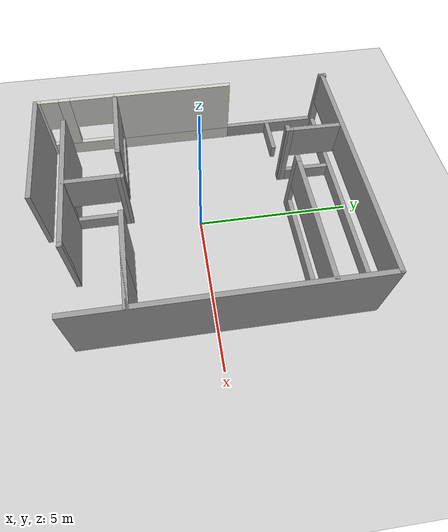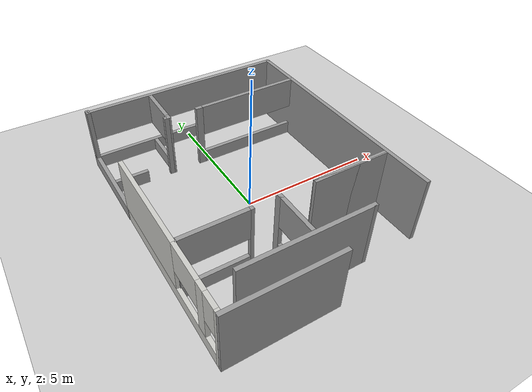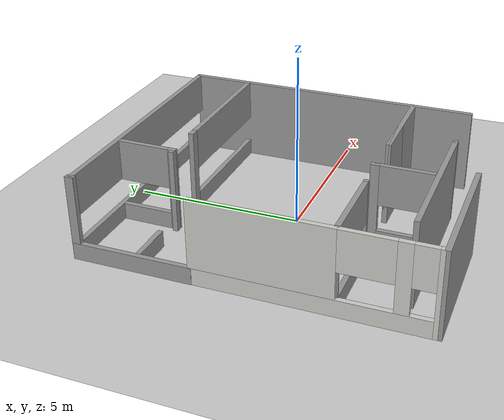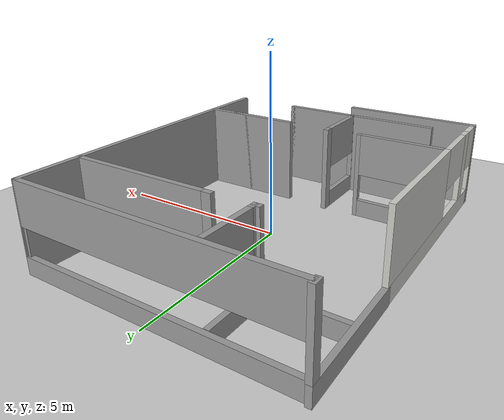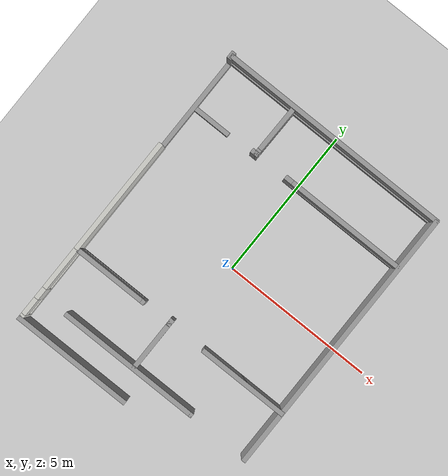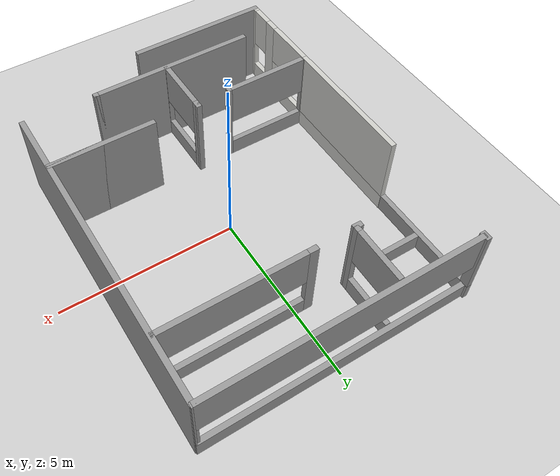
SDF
<sdf version="1.7">
 <world name="default">
  <light name="sun" type="directional">
   <pose>0 0 10 0 -0 0</pose>
   <diffuse>0.8 0.8 0.8 1</diffuse>
   <specular>0.2 0.2 0.2 1</specular>
   <attenuation>
    <range>1000</range>
    <constant>0.9</constant>
    <linear>0.01</linear>
    <quadratic>0.001</quadratic>
   </attenuation>
   <direction>-0.5 0.1 -0.9</direction>
   <spot><inner_angle>0</inner_angle><outer_angle>0</outer_angle><falloff>0</falloff></spot>
  </light>
  <model name="ground_plane">
   <static>1</static>
   <link name="link">
    <collision name="collision">
     <geometry><plane><normal>0 0 1</normal><size>100 100</size></plane></geometry>
     <surface>
      <contact><collide_bitmask>65535</collide_bitmask></contact>
      <friction><ode><mu>100</mu><mu2>50</mu2></ode></friction>
     </surface>
    </collision>
    <visual name="visual">
     <cast_shadows>0</cast_shadows>
     <geometry><plane><normal>0 0 1</normal><size>100 100</size></plane></geometry>
     <material>
      <script><uri>file://media/materials/scripts/gazebo.material</uri><name>Gazebo/Grey</name></script>
     </material>
    </visual>
   </link>
  </model>
  <gravity>0 0 -9.8</gravity>
  <magnetic_field>6e-06 2.3e-05 -4.2e-05</magnetic_field>
  <atmosphere type="adiabatic"/>
  <physics type="ode">
   <max_step_size>0.001</max_step_size>
   <real_time_factor>1</real_time_factor>
   <real_time_update_rate>1000</real_time_update_rate>
  </physics>
  <scene><ambient>0.4 0.4 0.4 1</ambient><background>0.7 0.7 0.7 1</background><shadows>1</shadows></scene>
  <spherical_coordinates>
   <surface_model>EARTH_WGS84</surface_model>
   <latitude_deg>0</latitude_deg>
   <longitude_deg>0</longitude_deg>
   <elevation>0</elevation>
   <heading_deg>0</heading_deg>
  </spherical_coordinates>
  <model name="Office_room_without_door">
   <pose>-0.084232 -0.06872 0 0 -0 0</pose>
   <link name="Wall_1">
    <collision name="Wall_1_Collision">
     <geometry><box><size>4.75 0.15 2.5</size></box></geometry>
     <pose>0 0 1.25 0 -0 0</pose>
    </collision>
    <visual name="Wall_1_Visual">
     <pose>0 0 1.25 0 -0 0</pose>
     <geometry><box><size>4.75 0.15 2.5</size></box></geometry>
     <material>
      <script><uri>file://media/materials/scripts/gazebo.material</uri><name>Gazebo/Grey</name></script>
      <ambient>1 1 1 1</ambient>
     </material>
     <meta><layer>0</layer></meta>
    </visual>
    <pose>-0.516715 -3.99864 0 0 -0 0</pose>
   </link>
   <link name="Wall_14">
    <collision name="Wall_14_Collision">
     <geometry><box><size>3 0.15 2.5</size></box></geometry>
     <pose>0 0 1.25 0 -0 0</pose>
    </collision>
    <visual name="Wall_14_Visual">
     <pose>0 0 1.25 0 -0 0</pose>
     <geometry><box><size>3 0.15 2.5</size></box></geometry>
     <material>
      <script><uri>file://media/materials/scripts/gazebo.material</uri><name>Gazebo/Grey</name></script>
      <ambient>1 1 1 1</ambient>
     </material>
     <meta><layer>0</layer></meta>
    </visual>
    <pose>2.39026 -2.31103 0 0 -0 3.14159</pose>
   </link>
   <link name="Wall_15">
    <collision name="Wall_15_Collision">
     <geometry><box><size>3 0.15 2.5</size></box></geometry>
     <pose>0 0 1.25 0 -0 0</pose>
    </collision>
    <visual name="Wall_15_Visual">
     <pose>0 0 1.25 0 -0 0</pose>
     <geometry><box><size>3 0.15 2.5</size></box></geometry>
     <material>
      <script><uri>file://media/materials/scripts/gazebo.material</uri><name>Gazebo/Grey</name></script>
      <ambient>1 1 1 1</ambient>
     </material>
     <meta><layer>0</layer></meta>
    </visual>
    <pose>2.39026 -2.31103 0 0 -0 0</pose>
   </link>
   <link name="Wall_19">
    <collision name="Wall_19_Collision">
     <geometry><box><size>0.25 0.15 2.5</size></box></geometry>
     <pose>0 0 1.25 0 -0 0</pose>
    </collision>
    <visual name="Wall_19_Visual">
     <pose>0 0 1.25 0 -0 0</pose>
     <geometry><box><size>0.25 0.15 2.5</size></box></geometry>
     <material>
      <script><uri>file://media/materials/scripts/gazebo.material</uri><name>Gazebo/Grey</name></script>
      <ambient>1 1 1 1</ambient>
     </material>
     <meta><layer>0</layer></meta>
    </visual>
    <pose>-0.346715 -2.28864 0 0 -0 1.5708</pose>
   </link>
   <link name="Wall_2">
    <collision name="Wall_2_Collision">
     <geometry><box><size>0.15 0.15 2.5</size></box></geometry>
     <pose>0 0 1.25 0 -0 0</pose>
    </collision>
    <visual name="Wall_2_Visual">
     <pose>0 0 1.25 0 -0 0</pose>
     <geometry><box><size>0.15 0.15 2.5</size></box></geometry>
     <material>
      <script><uri>file://media/materials/scripts/gazebo.material</uri><name>Gazebo/Grey</name></script>
      <ambient>1 1 1 1</ambient>
     </material>
     <meta><layer>0</layer></meta>
    </visual>
    <pose>1.78329 -3.99864 0 0 -0 0</pose>
   </link>
   <link name="Wall_29">
    <collision name="Wall_29_Collision">
     <geometry><box><size>9 0.15 2.5</size></box></geometry>
     <pose>0 0 1.25 0 -0 0</pose>
    </collision>
    <visual name="Wall_29_Visual">
     <pose>0 0 1.25 0 -0 0</pose>
     <geometry><box><size>9 0.15 2.5</size></box></geometry>
     <material>
      <script><uri>file://media/materials/scripts/gazebo.material</uri><name>Gazebo/Grey</name></script>
      <ambient>1 1 1 1</ambient>
     </material>
     <meta><layer>0</layer></meta>
    </visual>
    <pose>3.83671 0.402172 0 0 0 -1.5708</pose>
   </link>
   <link name="Wall_31">
    <collision name="Wall_31_Collision">
     <geometry><box><size>0.25 0.15 2.5</size></box></geometry>
     <pose>0 0 1.25 0 -0 0</pose>
    </collision>
    <visual name="Wall_31_Visual">
     <pose>0 0 1.25 0 -0 0</pose>
     <geometry><box><size>0.25 0.15 2.5</size></box></geometry>
     <material>
      <script><uri>file://media/materials/scripts/gazebo.material</uri><name>Gazebo/Grey</name></script>
      <ambient>1 1 1 1</ambient>
     </material>
     <meta><layer>0</layer></meta>
    </visual>
    <pose>-1.53122 3.11017 0 0 -0 3.14159</pose>
   </link>
   <link name="Wall_35">
    <pose>0.017406 4.87007 0 0 -0 0</pose>
    <visual name="Wall_35_Visual_0">
     <pose>-3.85781 0 1.25 0 -0 0</pose>
     <geometry><box><size>0.034369 0.15 2.5</size></box></geometry>
     <material>
      <script><uri>file://media/materials/scripts/gazebo.material</uri><name>Gazebo/Grey</name></script>
      <ambient>1 1 1 1</ambient>
     </material>
     <meta><layer>0</layer></meta>
    </visual>
    <collision name="Wall_35_Collision_0">
     <geometry><box><size>0.034369 0.15 2.5</size></box></geometry>
     <pose>-3.85781 0 1.25 0 -0 0</pose>
    </collision>
    <visual name="Wall_35_Visual_1">
     <pose>0.017185 0 0.25 0 -0 0</pose>
     <geometry><box><size>7.71563 0.15 0.5</size></box></geometry>
     <material>
      <script><uri>file://media/materials/scripts/gazebo.material</uri><name>Gazebo/Grey</name></script>
      <ambient>1 1 1 1</ambient>
     </material>
     <meta><layer>0</layer></meta>
    </visual>
    <collision name="Wall_35_Collision_1">
     <geometry><box><size>7.71563 0.15 0.5</size></box></geometry>
     <pose>0.017185 0 0.25 0 -0 0</pose>
    </collision>
    <visual name="Wall_35_Visual_2">
     <pose>3.85399 0 1.5 0 -0 0</pose>
     <geometry><box><size>0.042012 0.15 2</size></box></geometry>
     <material>
      <script><uri>file://media/materials/scripts/gazebo.material</uri><name>Gazebo/Grey</name></script>
      <ambient>1 1 1 1</ambient>
     </material>
     <meta><layer>0</layer></meta>
    </visual>
    <collision name="Wall_35_Collision_2">
     <geometry><box><size>0.042012 0.15 2</size></box></geometry>
     <pose>3.85399 0 1.5 0 -0 0</pose>
    </collision>
    <visual name="Wall_35_Visual_3">
     <pose>-0.003821 0 1.9 0 -0 0</pose>
     <geometry><box><size>7.67362 0.15 1.2</size></box></geometry>
     <material>
      <script><uri>file://media/materials/scripts/gazebo.material</uri><name>Gazebo/Grey</name></script>
      <ambient>1 1 1 1</ambient>
     </material>
     <meta><layer>0</layer></meta>
    </visual>
    <collision name="Wall_35_Collision_3">
     <geometry><box><size>7.67362 0.15 1.2</size></box></geometry>
     <pose>-0.003821 0 1.9 0 -0 0</pose>
    </collision>
   </link>
   <link name="Wall_37">
    <pose>-3.83671 3.25636 0 0 -0 1.5708</pose>
    <visual name="Wall_37_Visual_0">
     <pose>0 0 0.25 0 -0 0</pose>
     <geometry><box><size>3.5 0.15 0.5</size></box></geometry>
     <material>
      <script><uri>file://media/materials/scripts/gazebo.material</uri><name>Gazebo/Grey</name></script>
      <ambient>1 1 1 1</ambient>
     </material>
     <meta><layer>0</layer></meta>
    </visual>
    <collision name="Wall_37_Collision_0">
     <geometry><box><size>3.5 0.15 0.5</size></box></geometry>
     <pose>0 0 0.25 0 -0 0</pose>
    </collision>
    <visual name="Wall_37_Visual_1">
     <pose>1.62366 0 1.5 0 -0 0</pose>
     <geometry><box><size>0.252674 0.15 2</size></box></geometry>
     <material>
      <script><uri>file://media/materials/scripts/gazebo.material</uri><name>Gazebo/Grey</name></script>
      <ambient>1 1 1 1</ambient>
     </material>
     <meta><layer>0</layer></meta>
    </visual>
    <collision name="Wall_37_Collision_1">
     <geometry><box><size>0.252674 0.15 2</size></box></geometry>
     <pose>1.62366 0 1.5 0 -0 0</pose>
    </collision>
   </link>
   <link name="Wall_40">
    <pose>-3.13843 3.10362 0 0 -0 3.14159</pose>
    <visual name="Wall_40_Visual_0">
     <pose>0 0 0.25 0 -0 0</pose>
     <geometry><box><size>1.25 0.15 0.5</size></box></geometry>
     <material>
      <script><uri>file://media/materials/scripts/gazebo.material</uri><name>Gazebo/Grey</name></script>
      <ambient>1 1 1 1</ambient>
     </material>
     <meta><layer>0</layer></meta>
    </visual>
    <collision name="Wall_40_Collision_0">
     <geometry><box><size>1.25 0.15 0.5</size></box></geometry>
     <pose>0 0 0.25 0 -0 0</pose>
    </collision>
   </link>
   <link name="Wall_42">
    <pose>1.72225 3.1198 0 0 -0 0</pose>
    <visual name="Wall_42_Visual_0">
     <pose>-1.99309 0 1.25 0 -0 0</pose>
     <geometry><box><size>0.26382 0.15 2.5</size></box></geometry>
     <material>
      <script><uri>file://media/materials/scripts/gazebo.material</uri><name>Gazebo/Grey</name></script>
      <ambient>1 1 1 1</ambient>
     </material>
     <meta><layer>0</layer></meta>
    </visual>
    <collision name="Wall_42_Collision_0">
     <geometry><box><size>0.26382 0.15 2.5</size></box></geometry>
     <pose>-1.99309 0 1.25 0 -0 0</pose>
    </collision>
    <visual name="Wall_42_Visual_1">
     <pose>0.13191 0 0.25 0 -0 0</pose>
     <geometry><box><size>3.98618 0.15 0.5</size></box></geometry>
     <material>
      <script><uri>file://media/materials/scripts/gazebo.material</uri><name>Gazebo/Grey</name></script>
      <ambient>1 1 1 1</ambient>
     </material>
     <meta><layer>0</layer></meta>
    </visual>
    <collision name="Wall_42_Collision_1">
     <geometry><box><size>3.98618 0.15 0.5</size></box></geometry>
     <pose>0.13191 0 0.25 0 -0 0</pose>
    </collision>
    <visual name="Wall_42_Visual_2">
     <pose>2.10351 0 1.5 0 -0 0</pose>
     <geometry><box><size>0.042976 0.15 2</size></box></geometry>
     <material>
      <script><uri>file://media/materials/scripts/gazebo.material</uri><name>Gazebo/Grey</name></script>
      <ambient>1 1 1 1</ambient>
     </material>
     <meta><layer>0</layer></meta>
    </visual>
    <collision name="Wall_42_Collision_2">
     <geometry><box><size>0.042976 0.15 2</size></box></geometry>
     <pose>2.10351 0 1.5 0 -0 0</pose>
    </collision>
    <visual name="Wall_42_Visual_3">
     <pose>0.110422 0 1.9 0 -0 0</pose>
     <geometry><box><size>3.9432 0.15 1.2</size></box></geometry>
     <material>
      <script><uri>file://media/materials/scripts/gazebo.material</uri><name>Gazebo/Grey</name></script>
      <ambient>1 1 1 1</ambient>
     </material>
     <meta><layer>0</layer></meta>
    </visual>
    <collision name="Wall_42_Collision_3">
     <geometry><box><size>3.9432 0.15 1.2</size></box></geometry>
     <pose>0.110422 0 1.9 0 -0 0</pose>
    </collision>
   </link>
   <link name="Wall_44">
    <pose>-2.52917 -2.3175 0 0 -0 3.14159</pose>
    <visual name="Wall_44_Visual_0">
     <pose>-1.1869 0 1.25 0 -0 0</pose>
     <geometry><box><size>0.126206 0.15 2.5</size></box></geometry>
     <material>
      <script><uri>file://media/materials/scripts/gazebo.material</uri><name>Gazebo/Grey</name></script>
      <ambient>1 1 1 1</ambient>
     </material>
     <meta><layer>0</layer></meta>
    </visual>
    <collision name="Wall_44_Collision_0">
     <geometry><box><size>0.126206 0.15 2.5</size></box></geometry>
     <pose>-1.1869 0 1.25 0 -0 0</pose>
    </collision>
    <visual name="Wall_44_Visual_1">
     <pose>0.063103 0 0.25 0 -0 0</pose>
     <geometry><box><size>2.37379 0.15 0.5</size></box></geometry>
     <material>
      <script><uri>file://media/materials/scripts/gazebo.material</uri><name>Gazebo/Grey</name></script>
      <ambient>1 1 1 1</ambient>
     </material>
     <meta><layer>0</layer></meta>
    </visual>
    <collision name="Wall_44_Collision_1">
     <geometry><box><size>2.37379 0.15 0.5</size></box></geometry>
     <pose>0.063103 0 0.25 0 -0 0</pose>
    </collision>
    <visual name="Wall_44_Visual_2">
     <pose>1.22403 0 1.5 0 -0 0</pose>
     <geometry><box><size>0.05193 0.15 2</size></box></geometry>
     <material>
      <script><uri>file://media/materials/scripts/gazebo.material</uri><name>Gazebo/Grey</name></script>
      <ambient>1 1 1 1</ambient>
     </material>
     <meta><layer>0</layer></meta>
    </visual>
    <collision name="Wall_44_Collision_2">
     <geometry><box><size>0.05193 0.15 2</size></box></geometry>
     <pose>1.22403 0 1.5 0 -0 0</pose>
    </collision>
    <visual name="Wall_44_Visual_3">
     <pose>0.037138 0 1.9 0 -0 0</pose>
     <geometry><box><size>2.32186 0.15 1.2</size></box></geometry>
     <material>
      <script><uri>file://media/materials/scripts/gazebo.material</uri><name>Gazebo/Grey</name></script>
      <ambient>1 1 1 1</ambient>
     </material>
     <meta><layer>0</layer></meta>
    </visual>
    <collision name="Wall_44_Collision_3">
     <geometry><box><size>2.32186 0.15 1.2</size></box></geometry>
     <pose>0.037138 0 1.9 0 -0 0</pose>
    </collision>
   </link>
   <link name="Wall_46">
    <pose>-0.346715 -3.13864 0 0 0 -1.5708</pose>
    <visual name="Wall_46_Visual_0">
     <pose>-0.806799 0 1.25 0 -0 0</pose>
     <geometry><box><size>0.136402 0.15 2.5</size></box></geometry>
     <material>
      <script><uri>file://media/materials/scripts/gazebo.material</uri><name>Gazebo/Grey</name></script>
      <ambient>1 1 1 1</ambient>
     </material>
     <meta><layer>0</layer></meta>
    </visual>
    <collision name="Wall_46_Collision_0">
     <geometry><box><size>0.136402 0.15 2.5</size></box></geometry>
     <pose>-0.806799 0 1.25 0 -0 0</pose>
    </collision>
    <visual name="Wall_46_Visual_1">
     <pose>0.068201 0 0.25 0 -0 0</pose>
     <geometry><box><size>1.6136 0.15 0.5</size></box></geometry>
     <material>
      <script><uri>file://media/materials/scripts/gazebo.material</uri><name>Gazebo/Grey</name></script>
      <ambient>1 1 1 1</ambient>
     </material>
     <meta><layer>0</layer></meta>
    </visual>
    <collision name="Wall_46_Collision_1">
     <geometry><box><size>1.6136 0.15 0.5</size></box></geometry>
     <pose>0.068201 0 0.25 0 -0 0</pose>
    </collision>
    <visual name="Wall_46_Visual_2">
     <pose>0.824679 0 1.5 0 -0 0</pose>
     <geometry><box><size>0.100642 0.15 2</size></box></geometry>
     <material>
      <script><uri>file://media/materials/scripts/gazebo.material</uri><name>Gazebo/Grey</name></script>
      <ambient>1 1 1 1</ambient>
     </material>
     <meta><layer>0</layer></meta>
    </visual>
    <collision name="Wall_46_Collision_2">
     <geometry><box><size>0.100642 0.15 2</size></box></geometry>
     <pose>0.824679 0 1.5 0 -0 0</pose>
    </collision>
    <visual name="Wall_46_Visual_3">
     <pose>0.01788 0 1.9 0 -0 0</pose>
     <geometry><box><size>1.51296 0.15 1.2</size></box></geometry>
     <material>
      <script><uri>file://media/materials/scripts/gazebo.material</uri><name>Gazebo/Grey</name></script>
      <ambient>1 1 1 1</ambient>
     </material>
     <meta><layer>0</layer></meta>
    </visual>
    <collision name="Wall_46_Collision_3">
     <geometry><box><size>1.51296 0.15 1.2</size></box></geometry>
     <pose>0.01788 0 1.9 0 -0 0</pose>
    </collision>
   </link>
   <link name="Wall_48">
    <pose>-1.47116 3.91017 0 0 -0 1.55823</pose>
    <visual name="Wall_48_Visual_0">
     <pose>-0.758357 0 1.25 0 -0 0</pose>
     <geometry><box><size>0.233412 0.15 2.5</size></box></geometry>
     <material>
      <script><uri>file://media/materials/scripts/gazebo.material</uri><name>Gazebo/Grey</name></script>
      <ambient>1 1 1 1</ambient>
     </material>
     <meta><layer>0</layer></meta>
    </visual>
    <collision name="Wall_48_Collision_0">
     <geometry><box><size>0.233412 0.15 2.5</size></box></geometry>
     <pose>-0.758357 0 1.25 0 -0 0</pose>
    </collision>
    <visual name="Wall_48_Visual_1">
     <pose>0.116706 0 0.25 0 -0 0</pose>
     <geometry><box><size>1.51671 0.15 0.5</size></box></geometry>
     <material>
      <script><uri>file://media/materials/scripts/gazebo.material</uri><name>Gazebo/Grey</name></script>
      <ambient>1 1 1 1</ambient>
     </material>
     <meta><layer>0</layer></meta>
    </visual>
    <collision name="Wall_48_Collision_1">
     <geometry><box><size>1.51671 0.15 0.5</size></box></geometry>
     <pose>0.116706 0 0.25 0 -0 0</pose>
    </collision>
    <visual name="Wall_48_Visual_2">
     <pose>0.116706 0 1.9 0 -0 0</pose>
     <geometry><box><size>1.51671 0.15 1.2</size></box></geometry>
     <material>
      <script><uri>file://media/materials/scripts/gazebo.material</uri><name>Gazebo/Grey</name></script>
      <ambient>1 1 1 1</ambient>
     </material>
     <meta><layer>0</layer></meta>
    </visual>
    <collision name="Wall_48_Collision_2">
     <geometry><box><size>1.51671 0.15 1.2</size></box></geometry>
     <pose>0.116706 0 1.9 0 -0 0</pose>
    </collision>
   </link>
   <link name="Wall_7">
    <collision name="Wall_7_Collision">
     <geometry><box><size>4 0.15 2.5</size></box></geometry>
     <pose>0 0 1.25 0 -0 0</pose>
    </collision>
    <visual name="Wall_7_Visual">
     <pose>0 0 1.25 0 -0 0</pose>
     <geometry><box><size>4 0.15 2.5</size></box></geometry>
     <material>
      <script><uri>file://media/materials/scripts/gazebo.material</uri><name>Gazebo/Grey</name></script>
      <ambient>0 0 0 1</ambient>
     </material>
     <meta><layer>0</layer></meta>
    </visual>
    <pose>-1.89688 -4.93136 0 0 -0 0</pose>
   </link>
   <link name="Wall_9">
    <pose>-3.82332 -1.64581 0 0 -0 1.5708</pose>
    <visual name="Wall_9_Visual_0">
     <pose>-3.18923 0 1.25 0 -0 0</pose>
     <geometry><box><size>0.121542 0.15 2.5</size></box></geometry>
     <material>
      <script><uri>file://media/materials/scripts/gazebo.material</uri><name>Gazebo/CeilingTiled</name></script>
      <ambient>1 1 1 1</ambient>
     </material>
     <meta><layer>0</layer></meta>
    </visual>
    <collision name="Wall_9_Collision_0">
     <geometry><box><size>0.121542 0.15 2.5</size></box></geometry>
     <pose>-3.18923 0 1.25 0 -0 0</pose>
    </collision>
    <visual name="Wall_9_Visual_1">
     <pose>0.060771 0 0.25 0 -0 0</pose>
     <geometry><box><size>6.37846 0.15 0.5</size></box></geometry>
     <material>
      <script><uri>file://media/materials/scripts/gazebo.material</uri><name>Gazebo/CeilingTiled</name></script>
      <ambient>1 1 1 1</ambient>
     </material>
     <meta><layer>0</layer></meta>
    </visual>
    <collision name="Wall_9_Collision_1">
     <geometry><box><size>6.37846 0.15 0.5</size></box></geometry>
     <pose>0.060771 0 0.25 0 -0 0</pose>
    </collision>
    <visual name="Wall_9_Visual_2">
     <pose>-2.34543 0 1.5 0 -0 0</pose>
     <geometry><box><size>0.385418 0.15 2</size></box></geometry>
     <material>
      <script><uri>file://media/materials/scripts/gazebo.material</uri><name>Gazebo/CeilingTiled</name></script>
      <ambient>1 1 1 1</ambient>
     </material>
     <meta><layer>0</layer></meta>
    </visual>
    <collision name="Wall_9_Collision_2">
     <geometry><box><size>0.385418 0.15 2</size></box></geometry>
     <pose>-2.34543 0 1.5 0 -0 0</pose>
    </collision>
    <visual name="Wall_9_Visual_3">
     <pose>1.27449 0 1.5 0 -0 0</pose>
     <geometry><box><size>3.95101 0.15 2</size></box></geometry>
     <material>
      <script><uri>file://media/materials/scripts/gazebo.material</uri><name>Gazebo/CeilingTiled</name></script>
      <ambient>1 1 1 1</ambient>
     </material>
     <meta><layer>0</layer></meta>
    </visual>
    <collision name="Wall_9_Collision_3">
     <geometry><box><size>3.95101 0.15 2</size></box></geometry>
     <pose>1.27449 0 1.5 0 -0 0</pose>
    </collision>
    <visual name="Wall_9_Visual_4">
     <pose>-2.8333 0 1.9 0 -0 0</pose>
     <geometry><box><size>0.590321 0.15 1.2</size></box></geometry>
     <material>
      <script><uri>file://media/materials/scripts/gazebo.material</uri><name>Gazebo/CeilingTiled</name></script>
      <ambient>1 1 1 1</ambient>
     </material>
     <meta><layer>0</layer></meta>
    </visual>
    <collision name="Wall_9_Collision_4">
     <geometry><box><size>0.590321 0.15 1.2</size></box></geometry>
     <pose>-2.8333 0 1.9 0 -0 0</pose>
    </collision>
    <visual name="Wall_9_Visual_5">
     <pose>-1.42687 0 1.9 0 -0 0</pose>
     <geometry><box><size>1.45171 0.15 1.2</size></box></geometry>
     <material>
      <script><uri>file://media/materials/scripts/gazebo.material</uri><name>Gazebo/CeilingTiled</name></script>
      <ambient>1 1 1 1</ambient>
     </material>
     <meta><layer>0</layer></meta>
    </visual>
    <collision name="Wall_9_Collision_5">
     <geometry><box><size>1.45171 0.15 1.2</size></box></geometry>
     <pose>-1.42687 0 1.9 0 -0 0</pose>
    </collision>
   </link>
   <static>1</static>
  </model>
 </world>
</sdf>
